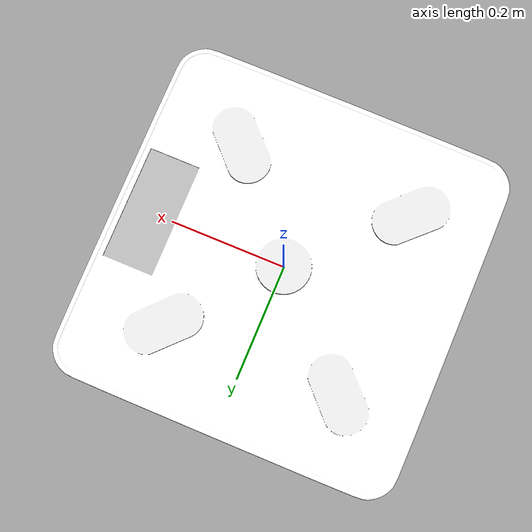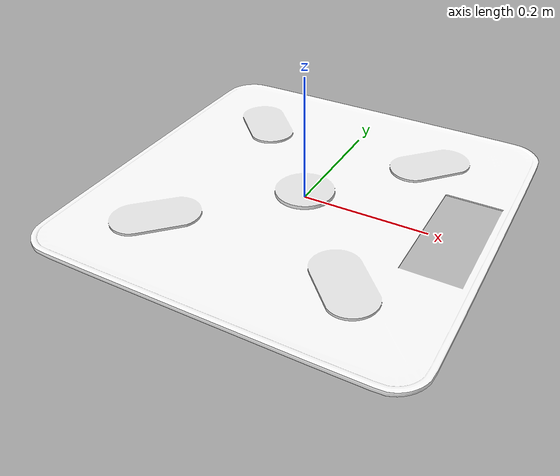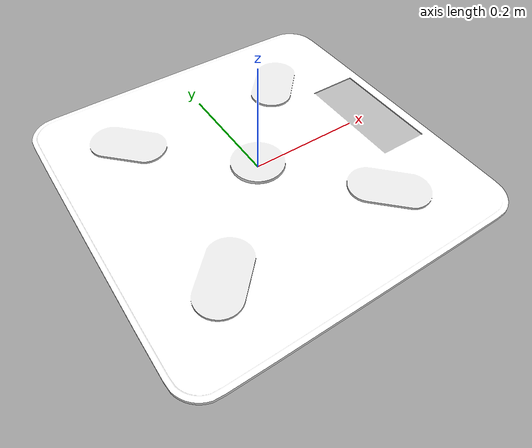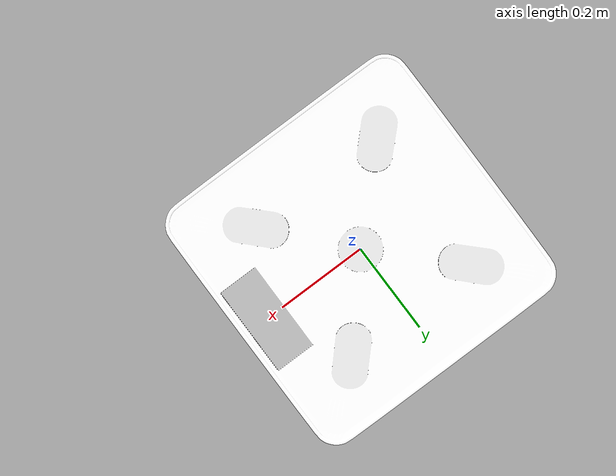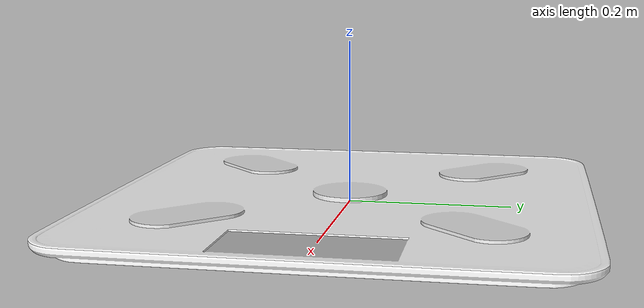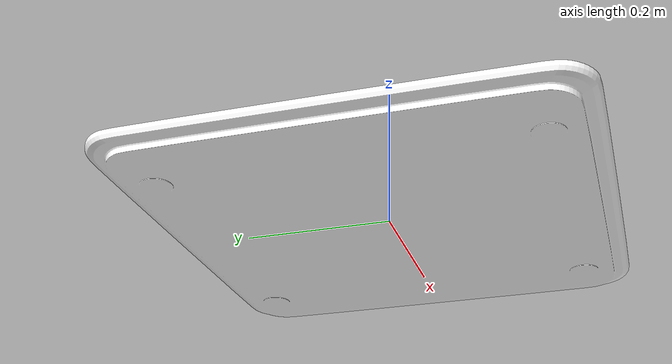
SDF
<?xml version="1.0" ?>
<sdf version="1.6">
  <model name="test_model_1">
    <link name="base_link">
      <allow_auto_disable>1</allow_auto_disable>
      <laser_retro>150</laser_retro>

      <visual name="visual">
        <pose>0.00000 0.00000 0.00000 3.14159 -1.57080 0.00000</pose>
        <cast_shadows>1</cast_shadows>
        <geometry><mesh><uri>model://test_model_1/meshes/Cube.006.dae</uri><scale>1 1 1</scale></mesh></geometry>
        <material>
          <script>
            <uri>model://test_model_1/materials/scripts</uri>
            <uri>model://test_model_1/materials/textures</uri>
          </script>
        </material>
      </visual>

      <inertial>
        <pose>0.00000 0.00000 0.00000 0.00000 0.00000 0.00000</pose>
        <mass>0.10000</mass>
        <inertia>
          <ixx>0.00296</ixx><ixy>-0.00000</ixy><ixz>0.00000</ixz>
          <iyy>0.00287</iyy><iyz>0.00000</iyz><izz>0.00582</izz>
        </inertia>
      </inertial>

      <collision name="collision">
        <pose>0.00000 0.00000 0.00000 3.14159 -1.57080 0.00000</pose>
        <geometry><box><size>0.02718 0.59563 0.58630</size></box></geometry>
        <surface>
          <friction><ode><mu>1.0</mu><mu2>1.0</mu2></ode></friction>
          <contact>
            <ode><kp>100000.0</kp><kd>100.0</kd><min_depth>0.001</min_depth><max_vel>0.1</max_vel></ode>
          </contact>
        </surface>
      </collision>
    </link>
  </model>
</sdf>
